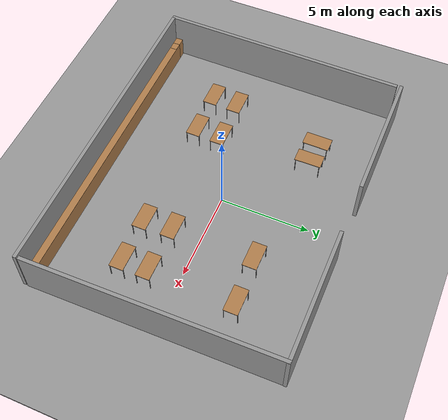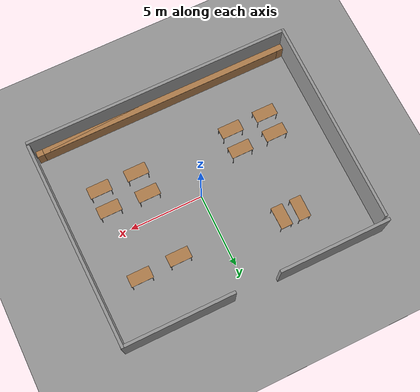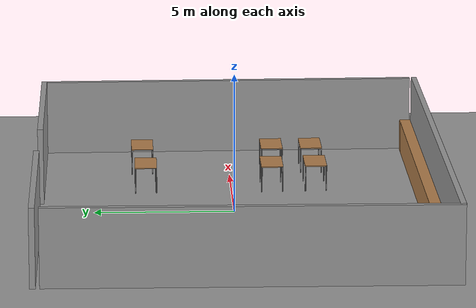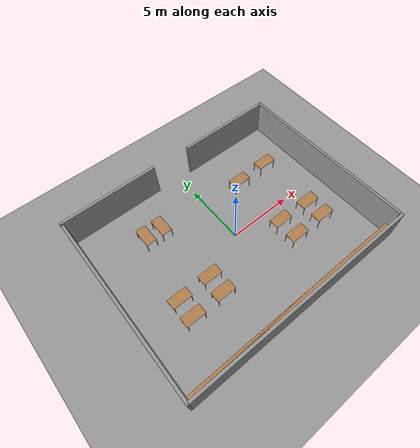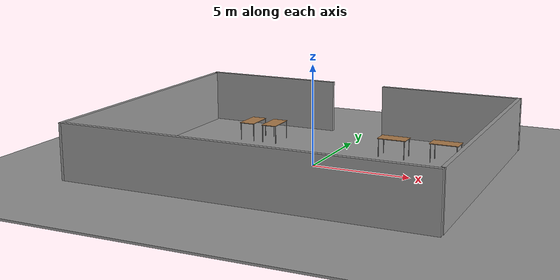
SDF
<sdf version="1.7">
 <world name="default">
  <light name="sun" type="directional">
   <pose>0 0 10 0 -0 0</pose>
   <diffuse>0.8 0.8 0.8 1</diffuse>
   <specular>0.2 0.2 0.2 1</specular>
   <attenuation>
    <range>1000</range>
    <constant>0.9</constant>
    <linear>0.01</linear>
    <quadratic>0.001</quadratic>
   </attenuation>
   <direction>-0.5 0.1 -0.9</direction>
   <spot><inner_angle>0</inner_angle><outer_angle>0</outer_angle><falloff>0</falloff></spot>
  </light>
  <model name="ground_plane">
   <static>1</static>
   <link name="link">
    <collision name="collision">
     <geometry><plane><normal>0 0 1</normal><size>100 100</size></plane></geometry>
     <surface>
      <contact><collide_bitmask>65535</collide_bitmask></contact>
      <friction><ode><mu>100</mu><mu2>50</mu2></ode></friction>
     </surface>
    </collision>
    <visual name="visual">
     <cast_shadows>0</cast_shadows>
     <geometry><plane><normal>0 0 1</normal><size>100 100</size></plane></geometry>
     <material>
      <script><uri>file://media/materials/scripts/gazebo.material</uri><name>Gazebo/Grey</name></script>
     </material>
    </visual>
   </link>
  </model>
  <gravity>0 0 -9.8</gravity>
  <magnetic_field>6e-06 2.3e-05 -4.2e-05</magnetic_field>
  <atmosphere type="adiabatic"/>
  <physics type="ode">
   <max_step_size>0.001</max_step_size>
   <real_time_factor>1</real_time_factor>
   <real_time_update_rate>1000</real_time_update_rate>
  </physics>
  <scene><ambient>0.4 0.4 0.4 1</ambient><background>0.7 0.7 0.7 1</background><shadows>1</shadows></scene>
  <spherical_coordinates>
   <surface_model>EARTH_WGS84</surface_model>
   <latitude_deg>0</latitude_deg>
   <longitude_deg>0</longitude_deg>
   <elevation>0</elevation>
   <heading_deg>0</heading_deg>
  </spherical_coordinates>
  <model name="ground_plane_0">
   <static>1</static>
   <link name="link">
    <collision name="collision">
     <geometry><plane><normal>0 0 1</normal><size>100 100</size></plane></geometry>
     <surface>
      <contact><collide_bitmask>65535</collide_bitmask></contact>
      <friction><ode><mu>100</mu><mu2>50</mu2></ode></friction>
     </surface>
    </collision>
    <visual name="visual">
     <cast_shadows>0</cast_shadows>
     <geometry><plane><normal>0 0 1</normal><size>100 100</size></plane></geometry>
     <material>
      <script><uri>file://media/materials/scripts/gazebo.material</uri><name>Gazebo/Grey</name></script>
     </material>
    </visual>
   </link>
   <pose>1.78818 -1.76805 0 0 -0 0</pose>
  </model>
  <model name="bookshelf_far">
   <link name="link">
    <inertial>
     <mass>1</mass>
     <inertia><ixx>1</ixx><ixy>0</ixy><ixz>0</ixz><iyy>1</iyy><iyz>0</iyz><izz>1</izz></inertia>
    </inertial>
    <pose>-8.07477 0 0 0 -0 0</pose>
    <visual name="visual5">
     <pose>0 -0.195 1.19 0 -0 0</pose>
     <geometry><box><size>16.8 0.4 0.02</size></box></geometry>
     <material>
      <script><uri>file://media/materials/scripts/gazebo.material</uri><name>Gazebo/Wood</name></script>
      <shader type="pixel"><normal_map>__default__</normal_map></shader>
      <ambient>1 1 1 1</ambient>
      <diffuse>1 1 1 1</diffuse>
      <specular>0.2 0.2 0.2 1</specular>
      <emissive>0 0 0 1</emissive>
     </material>
    </visual>
    <visual name="visual1">
     <pose>0 0.005 0.6 0 -0 0</pose>
     <geometry><box><size>16.8 0.01 1.2</size></box></geometry>
     <material>
      <script><uri>file://media/materials/scripts/gazebo.material</uri><name>Gazebo/Wood</name></script>
      <shader type="pixel"><normal_map>__default__</normal_map></shader>
      <ambient>1 1 1 1</ambient>
      <diffuse>1 1 1 1</diffuse>
      <specular>0.2 0.2 0.2 1</specular>
      <emissive>0 0 0 1</emissive>
     </material>
    </visual>
    <visual name="visual3">
     <pose>-0.45 -0.195 0.6 0 -0 0</pose>
     <geometry><box><size>16.8 0.4 1.2</size></box></geometry>
     <material>
      <script><uri>file://media/materials/scripts/gazebo.material</uri><name>Gazebo/Wood</name></script>
      <shader type="pixel"><normal_map>__default__</normal_map></shader>
      <ambient>1 1 1 1</ambient>
      <diffuse>1 1 1 1</diffuse>
      <specular>0.2 0.2 0.2 1</specular>
      <emissive>0 0 0 1</emissive>
     </material>
    </visual>
    <visual name="visual4">
     <pose>0 -0.195 0.03 0 -0 0</pose>
     <geometry><box><size>16.8 0.4 0.06</size></box></geometry>
     <material>
      <script><uri>file://media/materials/scripts/gazebo.material</uri><name>Gazebo/Wood</name></script>
      <shader type="pixel"><normal_map>__default__</normal_map></shader>
      <ambient>1 1 1 1</ambient>
      <diffuse>1 1 1 1</diffuse>
      <specular>0.2 0.2 0.2 1</specular>
      <emissive>0 0 0 1</emissive>
     </material>
    </visual>
    <visual name="visual2">
     <pose>0.45 -0.195 0.6 0 -0 0</pose>
     <geometry><box><size>16.8 0.4 1.2</size></box></geometry>
     <material>
      <script><uri>file://media/materials/scripts/gazebo.material</uri><name>Gazebo/Wood</name></script>
      <shader type="pixel"><normal_map>__default__</normal_map></shader>
      <ambient>1 1 1 1</ambient>
      <diffuse>1 1 1 1</diffuse>
      <specular>0.2 0.2 0.2 1</specular>
      <emissive>0 0 0 1</emissive>
     </material>
    </visual>
    <visual name="visual6">
     <pose>0 -0.195 0.43 0 -0 0</pose>
     <geometry><box><size>16.8 0.4 0.02</size></box></geometry>
     <material>
      <script><uri>file://media/materials/scripts/gazebo.material</uri><name>Gazebo/Wood</name></script>
      <shader type="pixel"><normal_map>__default__</normal_map></shader>
      <ambient>1 1 1 1</ambient>
      <diffuse>1 1 1 1</diffuse>
      <specular>0.2 0.2 0.2 1</specular>
      <emissive>0 0 0 1</emissive>
     </material>
    </visual>
    <visual name="visual7">
     <pose>0 -0.195 0.8 0 -0 0</pose>
     <geometry><box><size>17.2 0.4 0.02</size></box></geometry>
     <material>
      <script><uri>file://media/materials/scripts/gazebo.material</uri><name>Gazebo/Wood</name></script>
      <shader type="pixel"><normal_map>__default__</normal_map></shader>
      <ambient>1 1 1 1</ambient>
      <diffuse>1 1 1 1</diffuse>
      <specular>0.2 0.2 0.2 1</specular>
      <emissive>0 0 0 1</emissive>
     </material>
    </visual>
    <collision name="back">
     <pose>0 0.005 0.6 0 -0 0</pose>
     <geometry><box><size>16.8 0.01 1.2</size></box></geometry>
     <surface>
      <friction>
       <ode><mu>1</mu><mu2>1</mu2><fdir1>0 0 0</fdir1><slip1>0</slip1><slip2>0</slip2></ode>
       <torsional>
        <coefficient>1</coefficient>
        <patch_radius>0</patch_radius>
        <surface_radius>0</surface_radius>
        <use_patch_radius>1</use_patch_radius>
        <ode><slip>0</slip></ode>
       </torsional>
      </friction>
      <bounce><restitution_coefficient>0</restitution_coefficient><threshold>1e+06</threshold></bounce>
      <contact>
       <collide_without_contact>0</collide_without_contact>
       <collide_without_contact_bitmask>1</collide_without_contact_bitmask>
       <collide_bitmask>1</collide_bitmask>
       <ode>
        <soft_cfm>0</soft_cfm>
        <soft_erp>0.2</soft_erp>
        <kp>1e+13</kp>
        <kd>1</kd>
        <max_vel>0.01</max_vel>
        <min_depth>0</min_depth>
       </ode>
       <bullet>
        <split_impulse>1</split_impulse>
        <split_impulse_penetration_threshold>-0.01</split_impulse_penetration_threshold>
        <soft_cfm>0</soft_cfm>
        <soft_erp>0.2</soft_erp>
        <kp>1e+13</kp>
        <kd>1</kd>
       </bullet>
      </contact>
     </surface>
    </collision>
    <collision name="top">
     <pose>0 -0.195 1.19 0 -0 0</pose>
     <geometry><box><size>17.2 0.4 0.02</size></box></geometry>
     <surface>
      <friction>
       <ode><mu>1</mu><mu2>1</mu2><fdir1>0 0 0</fdir1><slip1>0</slip1><slip2>0</slip2></ode>
       <torsional>
        <coefficient>1</coefficient>
        <patch_radius>0</patch_radius>
        <surface_radius>0</surface_radius>
        <use_patch_radius>1</use_patch_radius>
        <ode><slip>0</slip></ode>
       </torsional>
      </friction>
      <bounce><restitution_coefficient>0</restitution_coefficient><threshold>1e+06</threshold></bounce>
      <contact>
       <collide_without_contact>0</collide_without_contact>
       <collide_without_contact_bitmask>1</collide_without_contact_bitmask>
       <collide_bitmask>1</collide_bitmask>
       <ode>
        <soft_cfm>0</soft_cfm>
        <soft_erp>0.2</soft_erp>
        <kp>1e+13</kp>
        <kd>1</kd>
        <max_vel>0.01</max_vel>
        <min_depth>0</min_depth>
       </ode>
       <bullet>
        <split_impulse>1</split_impulse>
        <split_impulse_penetration_threshold>-0.01</split_impulse_penetration_threshold>
        <soft_cfm>0</soft_cfm>
        <soft_erp>0.2</soft_erp>
        <kp>1e+13</kp>
        <kd>1</kd>
       </bullet>
      </contact>
     </surface>
    </collision>
    <collision name="right_side">
     <pose>-0.45 -0.195 0.6 0 -0 0</pose>
     <geometry><box><size>16.8 0.4 1.2</size></box></geometry>
     <surface>
      <friction>
       <ode><mu>1</mu><mu2>1</mu2><fdir1>0 0 0</fdir1><slip1>0</slip1><slip2>0</slip2></ode>
       <torsional>
        <coefficient>1</coefficient>
        <patch_radius>0</patch_radius>
        <surface_radius>0</surface_radius>
        <use_patch_radius>1</use_patch_radius>
        <ode><slip>0</slip></ode>
       </torsional>
      </friction>
      <bounce><restitution_coefficient>0</restitution_coefficient><threshold>1e+06</threshold></bounce>
      <contact>
       <collide_without_contact>0</collide_without_contact>
       <collide_without_contact_bitmask>1</collide_without_contact_bitmask>
       <collide_bitmask>1</collide_bitmask>
       <ode>
        <soft_cfm>0</soft_cfm>
        <soft_erp>0.2</soft_erp>
        <kp>1e+13</kp>
        <kd>1</kd>
        <max_vel>0.01</max_vel>
        <min_depth>0</min_depth>
       </ode>
       <bullet>
        <split_impulse>1</split_impulse>
        <split_impulse_penetration_threshold>-0.01</split_impulse_penetration_threshold>
        <soft_cfm>0</soft_cfm>
        <soft_erp>0.2</soft_erp>
        <kp>1e+13</kp>
        <kd>1</kd>
       </bullet>
      </contact>
     </surface>
    </collision>
    <collision name="left_side">
     <pose>0.45 -0.195 0.6 0 -0 0</pose>
     <geometry><box><size>16.8 0.4 1.2</size></box></geometry>
     <surface>
      <friction>
       <ode><mu>1</mu><mu2>1</mu2><fdir1>0 0 0</fdir1><slip1>0</slip1><slip2>0</slip2></ode>
       <torsional>
        <coefficient>1</coefficient>
        <patch_radius>0</patch_radius>
        <surface_radius>0</surface_radius>
        <use_patch_radius>1</use_patch_radius>
        <ode><slip>0</slip></ode>
       </torsional>
      </friction>
      <bounce><restitution_coefficient>0</restitution_coefficient><threshold>1e+06</threshold></bounce>
      <contact>
       <collide_without_contact>0</collide_without_contact>
       <collide_without_contact_bitmask>1</collide_without_contact_bitmask>
       <collide_bitmask>1</collide_bitmask>
       <ode>
        <soft_cfm>0</soft_cfm>
        <soft_erp>0.2</soft_erp>
        <kp>1e+13</kp>
        <kd>1</kd>
        <max_vel>0.01</max_vel>
        <min_depth>0</min_depth>
       </ode>
       <bullet>
        <split_impulse>1</split_impulse>
        <split_impulse_penetration_threshold>-0.01</split_impulse_penetration_threshold>
        <soft_cfm>0</soft_cfm>
        <soft_erp>0.2</soft_erp>
        <kp>1e+13</kp>
        <kd>1</kd>
       </bullet>
      </contact>
     </surface>
    </collision>
    <collision name="low_shelf">
     <pose>0 -0.195 0.43 0 -0 0</pose>
     <geometry><box><size>16.8 0.4 0.02</size></box></geometry>
     <surface>
      <friction>
       <ode><mu>1</mu><mu2>1</mu2><fdir1>0 0 0</fdir1><slip1>0</slip1><slip2>0</slip2></ode>
       <torsional>
        <coefficient>1</coefficient>
        <patch_radius>0</patch_radius>
        <surface_radius>0</surface_radius>
        <use_patch_radius>1</use_patch_radius>
        <ode><slip>0</slip></ode>
       </torsional>
      </friction>
      <bounce><restitution_coefficient>0</restitution_coefficient><threshold>1e+06</threshold></bounce>
      <contact>
       <collide_without_contact>0</collide_without_contact>
       <collide_without_contact_bitmask>1</collide_without_contact_bitmask>
       <collide_bitmask>1</collide_bitmask>
       <ode>
        <soft_cfm>0</soft_cfm>
        <soft_erp>0.2</soft_erp>
        <kp>1e+13</kp>
        <kd>1</kd>
        <max_vel>0.01</max_vel>
        <min_depth>0</min_depth>
       </ode>
       <bullet>
        <split_impulse>1</split_impulse>
        <split_impulse_penetration_threshold>-0.01</split_impulse_penetration_threshold>
        <soft_cfm>0</soft_cfm>
        <soft_erp>0.2</soft_erp>
        <kp>1e+13</kp>
        <kd>1</kd>
       </bullet>
      </contact>
     </surface>
    </collision>
    <collision name="bottom">
     <pose>0 -0.195 0.03 0 -0 0</pose>
     <geometry><box><size>16.8 0.4 0.06</size></box></geometry>
     <surface>
      <friction>
       <ode><mu>1</mu><mu2>1</mu2><fdir1>0 0 0</fdir1><slip1>0</slip1><slip2>0</slip2></ode>
       <torsional>
        <coefficient>1</coefficient>
        <patch_radius>0</patch_radius>
        <surface_radius>0</surface_radius>
        <use_patch_radius>1</use_patch_radius>
        <ode><slip>0</slip></ode>
       </torsional>
      </friction>
      <bounce><restitution_coefficient>0</restitution_coefficient><threshold>1e+06</threshold></bounce>
      <contact>
       <collide_without_contact>0</collide_without_contact>
       <collide_without_contact_bitmask>1</collide_without_contact_bitmask>
       <collide_bitmask>1</collide_bitmask>
       <ode>
        <soft_cfm>0</soft_cfm>
        <soft_erp>0.2</soft_erp>
        <kp>1e+13</kp>
        <kd>1</kd>
        <max_vel>0.01</max_vel>
        <min_depth>0</min_depth>
       </ode>
       <bullet>
        <split_impulse>1</split_impulse>
        <split_impulse_penetration_threshold>-0.01</split_impulse_penetration_threshold>
        <soft_cfm>0</soft_cfm>
        <soft_erp>0.2</soft_erp>
        <kp>1e+13</kp>
        <kd>1</kd>
       </bullet>
      </contact>
     </surface>
    </collision>
    <collision name="high_shelf">
     <pose>0 -0.195 0.8 0 -0 0</pose>
     <geometry><box><size>16.8 0.4 0.02</size></box></geometry>
     <surface>
      <friction>
       <ode><mu>1</mu><mu2>1</mu2><fdir1>0 0 0</fdir1><slip1>0</slip1><slip2>0</slip2></ode>
       <torsional>
        <coefficient>1</coefficient>
        <patch_radius>0</patch_radius>
        <surface_radius>0</surface_radius>
        <use_patch_radius>1</use_patch_radius>
        <ode><slip>0</slip></ode>
       </torsional>
      </friction>
      <bounce><restitution_coefficient>0</restitution_coefficient><threshold>1e+06</threshold></bounce>
      <contact>
       <collide_without_contact>0</collide_without_contact>
       <collide_without_contact_bitmask>1</collide_without_contact_bitmask>
       <collide_bitmask>1</collide_bitmask>
       <ode>
        <soft_cfm>0</soft_cfm>
        <soft_erp>0.2</soft_erp>
        <kp>1e+13</kp>
        <kd>1</kd>
        <max_vel>0.01</max_vel>
        <min_depth>0</min_depth>
       </ode>
       <bullet>
        <split_impulse>1</split_impulse>
        <split_impulse_penetration_threshold>-0.01</split_impulse_penetration_threshold>
        <soft_cfm>0</soft_cfm>
        <soft_erp>0.2</soft_erp>
        <kp>1e+13</kp>
        <kd>1</kd>
       </bullet>
      </contact>
     </surface>
    </collision>
   </link>
   <static>1</static>
   <pose>7.67216 -6.62917 0 0 -0 0</pose>
  </model>
  <model name="side_grey_wall_far">
   <link name="link">
    <pose>0 0 1.4 0 -0 0</pose>
    <inertial>
     <mass>1</mass>
     <inertia><ixx>1</ixx><ixy>0</ixy><ixz>0</ixz><iyy>1</iyy><iyz>0</iyz><izz>1</izz></inertia>
    </inertial>
    <visual name="visual">
     <cast_shadows>0</cast_shadows>
     <geometry><box><size>14 0.2 2.8</size></box></geometry>
     <material>
      <script>
       <uri>model://grey_wall/materials/scripts</uri>
       <uri>model://grey_wall/materials/textures</uri>
       <name>vrc/grey_wall</name>
      </script>
      <shader type="pixel"><normal_map>__default__</normal_map></shader>
      <ambient>1 1 1 1</ambient>
      <diffuse>1 1 1 1</diffuse>
      <specular>0 0 0 1</specular>
      <emissive>0 0 0 1</emissive>
     </material>
    </visual>
    <collision name="collision">
     <geometry><box><size>14 0.2 2.8</size></box></geometry>
     <surface>
      <friction>
       <ode><mu>1</mu><mu2>1</mu2><fdir1>0 0 0</fdir1><slip1>0</slip1><slip2>0</slip2></ode>
       <torsional>
        <coefficient>1</coefficient>
        <patch_radius>0</patch_radius>
        <surface_radius>0</surface_radius>
        <use_patch_radius>1</use_patch_radius>
        <ode><slip>0</slip></ode>
       </torsional>
      </friction>
      <bounce><restitution_coefficient>0</restitution_coefficient><threshold>1e+06</threshold></bounce>
      <contact>
       <collide_without_contact>0</collide_without_contact>
       <collide_without_contact_bitmask>1</collide_without_contact_bitmask>
       <collide_bitmask>1</collide_bitmask>
       <ode>
        <soft_cfm>0</soft_cfm>
        <soft_erp>0.2</soft_erp>
        <kp>1e+13</kp>
        <kd>1</kd>
        <max_vel>0.01</max_vel>
        <min_depth>0</min_depth>
       </ode>
       <bullet>
        <split_impulse>1</split_impulse>
        <split_impulse_penetration_threshold>-0.01</split_impulse_penetration_threshold>
        <soft_cfm>0</soft_cfm>
        <soft_erp>0.2</soft_erp>
        <kp>1e+13</kp>
        <kd>1</kd>
       </bullet>
      </contact>
     </surface>
    </collision>
   </link>
   <static>1</static>
   <pose>8.54024 0.001071 0 0 0 -1.55555</pose>
  </model>
  <model name="side_grey_wall_far_clone">
   <link name="link">
    <pose>0 0 1.4 0 -0 0</pose>
    <inertial>
     <mass>1</mass>
     <inertia><ixx>1</ixx><ixy>0</ixy><ixz>0</ixz><iyy>1</iyy><iyz>0</iyz><izz>1</izz></inertia>
    </inertial>
    <visual name="visual">
     <cast_shadows>0</cast_shadows>
     <geometry><box><size>14 0.2 2.8</size></box></geometry>
     <material>
      <script>
       <uri>model://grey_wall/materials/scripts</uri>
       <uri>model://grey_wall/materials/textures</uri>
       <name>vrc/grey_wall</name>
      </script>
      <shader type="pixel"><normal_map>__default__</normal_map></shader>
      <ambient>1 1 1 1</ambient>
      <diffuse>1 1 1 1</diffuse>
      <specular>0 0 0 1</specular>
      <emissive>0 0 0 1</emissive>
     </material>
    </visual>
    <collision name="collision">
     <geometry><box><size>14 0.2 2.8</size></box></geometry>
     <surface>
      <friction>
       <ode><mu>1</mu><mu2>1</mu2><fdir1>0 0 0</fdir1><slip1>0</slip1><slip2>0</slip2></ode>
       <torsional>
        <coefficient>1</coefficient>
        <patch_radius>0</patch_radius>
        <surface_radius>0</surface_radius>
        <use_patch_radius>1</use_patch_radius>
        <ode><slip>0</slip></ode>
       </torsional>
      </friction>
      <bounce><restitution_coefficient>0</restitution_coefficient><threshold>1e+06</threshold></bounce>
      <contact>
       <collide_without_contact>0</collide_without_contact>
       <collide_without_contact_bitmask>1</collide_without_contact_bitmask>
       <collide_bitmask>1</collide_bitmask>
       <ode>
        <soft_cfm>0</soft_cfm>
        <soft_erp>0.2</soft_erp>
        <kp>1e+13</kp>
        <kd>1</kd>
        <max_vel>0.01</max_vel>
        <min_depth>0</min_depth>
       </ode>
       <bullet>
        <split_impulse>1</split_impulse>
        <split_impulse_penetration_threshold>-0.01</split_impulse_penetration_threshold>
        <soft_cfm>0</soft_cfm>
        <soft_erp>0.2</soft_erp>
        <kp>1e+13</kp>
        <kd>1</kd>
       </bullet>
      </contact>
     </surface>
    </collision>
   </link>
   <static>1</static>
   <pose>-9.32 -0.255453 0 0 0 -1.57799</pose>
  </model>
  <model name="front_grey_wall_far">
   <link name="link">
    <pose>-5.03781 0.079911 1.4 0 -0 0</pose>
    <inertial>
     <inertia><ixx>0</ixx><ixy>0</ixy><ixz>0</ixz><iyy>0</iyy><iyz>0</iyz><izz>0</izz></inertia>
     <mass>0</mass>
    </inertial>
    <visual name="visual">
     <cast_shadows>0</cast_shadows>
     <geometry><box><size>18.05 0.2 2.8</size></box></geometry>
     <material>
      <script>
       <uri>model://grey_wall/materials/scripts</uri>
       <uri>model://grey_wall/materials/textures</uri>
       <name>vrc/grey_wall</name>
      </script>
      <shader type="pixel"><normal_map>__default__</normal_map></shader>
      <ambient>1 1 1 1</ambient>
      <diffuse>1 1 1 1</diffuse>
      <specular>0 0 0 1</specular>
      <emissive>0 0 0 1</emissive>
     </material>
    </visual>
    <collision name="collision">
     <geometry><box><size>17.5 0.2 2.8</size></box></geometry>
     <surface>
      <friction>
       <ode><mu>1</mu><mu2>1</mu2><fdir1>0 0 0</fdir1><slip1>0</slip1><slip2>0</slip2></ode>
       <torsional>
        <coefficient>1</coefficient>
        <patch_radius>0</patch_radius>
        <surface_radius>0</surface_radius>
        <use_patch_radius>1</use_patch_radius>
        <ode><slip>0</slip></ode>
       </torsional>
      </friction>
      <bounce><restitution_coefficient>0</restitution_coefficient><threshold>1e+06</threshold></bounce>
      <contact>
       <collide_without_contact>0</collide_without_contact>
       <collide_without_contact_bitmask>1</collide_without_contact_bitmask>
       <collide_bitmask>1</collide_bitmask>
       <ode>
        <soft_cfm>0</soft_cfm>
        <soft_erp>0.2</soft_erp>
        <kp>1e+13</kp>
        <kd>1</kd>
        <max_vel>0.01</max_vel>
        <min_depth>0</min_depth>
       </ode>
       <bullet>
        <split_impulse>1</split_impulse>
        <split_impulse_penetration_threshold>-0.01</split_impulse_penetration_threshold>
        <soft_cfm>0</soft_cfm>
        <soft_erp>0.2</soft_erp>
        <kp>1e+13</kp>
        <kd>1</kd>
       </bullet>
      </contact>
     </surface>
    </collision>
   </link>
   <static>1</static>
   <pose>4.73611 -7.24926 0 0 -0 0</pose>
  </model>
  <model name="table">
   <static>1</static>
   <link name="link">
    <collision name="surface">
     <pose>0 0 1 0 -0 0</pose>
     <geometry><box><size>1.5 0.8 0.03</size></box></geometry>
     <surface><friction><ode><mu>0.6</mu><mu2>0.6</mu2></ode></friction></surface>
    </collision>
    <visual name="visual1">
     <pose>0 0 1 0 -0 0</pose>
     <geometry><box><size>1.5 0.8 0.03</size></box></geometry>
     <material>
      <script><uri>file://media/materials/scripts/gazebo.material</uri><name>Gazebo/Wood</name></script>
     </material>
    </visual>
    <collision name="front_left_leg">
     <pose>0.68 0.38 0.5 0 -0 0</pose>
     <geometry><cylinder><radius>0.02</radius><length>1</length></cylinder></geometry>
    </collision>
    <visual name="front_left_leg">
     <pose>0.68 0.38 0.5 0 -0 0</pose>
     <geometry><cylinder><radius>0.02</radius><length>1</length></cylinder></geometry>
     <material>
      <script><uri>file://media/materials/scripts/gazebo.material</uri><name>Gazebo/Grey</name></script>
     </material>
    </visual>
    <collision name="front_right_leg">
     <pose>0.68 -0.38 0.5 0 -0 0</pose>
     <geometry><cylinder><radius>0.02</radius><length>1</length></cylinder></geometry>
    </collision>
    <visual name="front_right_leg">
     <pose>0.68 -0.38 0.5 0 -0 0</pose>
     <geometry><cylinder><radius>0.02</radius><length>1</length></cylinder></geometry>
     <material>
      <script><uri>file://media/materials/scripts/gazebo.material</uri><name>Gazebo/Grey</name></script>
     </material>
    </visual>
    <collision name="back_right_leg">
     <pose>-0.68 -0.38 0.5 0 -0 0</pose>
     <geometry><cylinder><radius>0.02</radius><length>1</length></cylinder></geometry>
    </collision>
    <visual name="back_right_leg">
     <pose>-0.68 -0.38 0.5 0 -0 0</pose>
     <geometry><cylinder><radius>0.02</radius><length>1</length></cylinder></geometry>
     <material>
      <script><uri>file://media/materials/scripts/gazebo.material</uri><name>Gazebo/Grey</name></script>
     </material>
    </visual>
    <collision name="back_left_leg">
     <pose>-0.68 0.38 0.5 0 -0 0</pose>
     <geometry><cylinder><radius>0.02</radius><length>1</length></cylinder></geometry>
    </collision>
    <visual name="back_left_leg">
     <pose>-0.68 0.38 0.5 0 -0 0</pose>
     <geometry><cylinder><radius>0.02</radius><length>1</length></cylinder></geometry>
     <material>
      <script><uri>file://media/materials/scripts/gazebo.material</uri><name>Gazebo/Grey</name></script>
     </material>
    </visual>
   </link>
   <pose>5.74944 -3.03336 0 0 -0 0</pose>
  </model>
  <model name="table_clone">
   <static>1</static>
   <link name="link">
    <collision name="surface">
     <pose>0 0 1 0 -0 0</pose>
     <geometry><box><size>1.5 0.8 0.03</size></box></geometry>
     <surface><friction><ode><mu>0.6</mu><mu2>0.6</mu2></ode></friction></surface>
    </collision>
    <visual name="visual1">
     <pose>0 0 1 0 -0 0</pose>
     <geometry><box><size>1.5 0.8 0.03</size></box></geometry>
     <material>
      <script><uri>file://media/materials/scripts/gazebo.material</uri><name>Gazebo/Wood</name></script>
     </material>
    </visual>
    <collision name="front_left_leg">
     <pose>0.68 0.38 0.5 0 -0 0</pose>
     <geometry><cylinder><radius>0.02</radius><length>1</length></cylinder></geometry>
    </collision>
    <visual name="front_left_leg">
     <pose>0.68 0.38 0.5 0 -0 0</pose>
     <geometry><cylinder><radius>0.02</radius><length>1</length></cylinder></geometry>
     <material>
      <script><uri>file://media/materials/scripts/gazebo.material</uri><name>Gazebo/Grey</name></script>
     </material>
    </visual>
    <collision name="front_right_leg">
     <pose>0.68 -0.38 0.5 0 -0 0</pose>
     <geometry><cylinder><radius>0.02</radius><length>1</length></cylinder></geometry>
    </collision>
    <visual name="front_right_leg">
     <pose>0.68 -0.38 0.5 0 -0 0</pose>
     <geometry><cylinder><radius>0.02</radius><length>1</length></cylinder></geometry>
     <material>
      <script><uri>file://media/materials/scripts/gazebo.material</uri><name>Gazebo/Grey</name></script>
     </material>
    </visual>
    <collision name="back_right_leg">
     <pose>-0.68 -0.38 0.5 0 -0 0</pose>
     <geometry><cylinder><radius>0.02</radius><length>1</length></cylinder></geometry>
    </collision>
    <visual name="back_right_leg">
     <pose>-0.68 -0.38 0.5 0 -0 0</pose>
     <geometry><cylinder><radius>0.02</radius><length>1</length></cylinder></geometry>
     <material>
      <script><uri>file://media/materials/scripts/gazebo.material</uri><name>Gazebo/Grey</name></script>
     </material>
    </visual>
    <collision name="back_left_leg">
     <pose>-0.68 0.38 0.5 0 -0 0</pose>
     <geometry><cylinder><radius>0.02</radius><length>1</length></cylinder></geometry>
    </collision>
    <visual name="back_left_leg">
     <pose>-0.68 0.38 0.5 0 -0 0</pose>
     <geometry><cylinder><radius>0.02</radius><length>1</length></cylinder></geometry>
     <material>
      <script><uri>file://media/materials/scripts/gazebo.material</uri><name>Gazebo/Grey</name></script>
     </material>
    </visual>
   </link>
   <pose>3.16129 -3.06142 0 0 -0 0</pose>
  </model>
  <model name="table_clone_0">
   <static>1</static>
   <link name="link">
    <collision name="surface">
     <pose>0 0 1 0 -0 0</pose>
     <geometry><box><size>1.5 0.8 0.03</size></box></geometry>
     <surface><friction><ode><mu>0.6</mu><mu2>0.6</mu2></ode></friction></surface>
    </collision>
    <visual name="visual1">
     <pose>0 0 1 0 -0 0</pose>
     <geometry><box><size>1.5 0.8 0.03</size></box></geometry>
     <material>
      <script><uri>file://media/materials/scripts/gazebo.material</uri><name>Gazebo/Wood</name></script>
     </material>
    </visual>
    <collision name="front_left_leg">
     <pose>0.68 0.38 0.5 0 -0 0</pose>
     <geometry><cylinder><radius>0.02</radius><length>1</length></cylinder></geometry>
    </collision>
    <visual name="front_left_leg">
     <pose>0.68 0.38 0.5 0 -0 0</pose>
     <geometry><cylinder><radius>0.02</radius><length>1</length></cylinder></geometry>
     <material>
      <script><uri>file://media/materials/scripts/gazebo.material</uri><name>Gazebo/Grey</name></script>
     </material>
    </visual>
    <collision name="front_right_leg">
     <pose>0.68 -0.38 0.5 0 -0 0</pose>
     <geometry><cylinder><radius>0.02</radius><length>1</length></cylinder></geometry>
    </collision>
    <visual name="front_right_leg">
     <pose>0.68 -0.38 0.5 0 -0 0</pose>
     <geometry><cylinder><radius>0.02</radius><length>1</length></cylinder></geometry>
     <material>
      <script><uri>file://media/materials/scripts/gazebo.material</uri><name>Gazebo/Grey</name></script>
     </material>
    </visual>
    <collision name="back_right_leg">
     <pose>-0.68 -0.38 0.5 0 -0 0</pose>
     <geometry><cylinder><radius>0.02</radius><length>1</length></cylinder></geometry>
    </collision>
    <visual name="back_right_leg">
     <pose>-0.68 -0.38 0.5 0 -0 0</pose>
     <geometry><cylinder><radius>0.02</radius><length>1</length></cylinder></geometry>
     <material>
      <script><uri>file://media/materials/scripts/gazebo.material</uri><name>Gazebo/Grey</name></script>
     </material>
    </visual>
    <collision name="back_left_leg">
     <pose>-0.68 0.38 0.5 0 -0 0</pose>
     <geometry><cylinder><radius>0.02</radius><length>1</length></cylinder></geometry>
    </collision>
    <visual name="back_left_leg">
     <pose>-0.68 0.38 0.5 0 -0 0</pose>
     <geometry><cylinder><radius>0.02</radius><length>1</length></cylinder></geometry>
     <material>
      <script><uri>file://media/materials/scripts/gazebo.material</uri><name>Gazebo/Grey</name></script>
     </material>
    </visual>
   </link>
   <pose>5.72129 -1.57121 0 0 -0 0</pose>
  </model>
  <model name="table_clone_1">
   <static>1</static>
   <link name="link">
    <collision name="surface">
     <pose>0 0 1 0 -0 0</pose>
     <geometry><box><size>1.5 0.8 0.03</size></box></geometry>
     <surface><friction><ode><mu>0.6</mu><mu2>0.6</mu2></ode></friction></surface>
    </collision>
    <visual name="visual1">
     <pose>0 0 1 0 -0 0</pose>
     <geometry><box><size>1.5 0.8 0.03</size></box></geometry>
     <material>
      <script><uri>file://media/materials/scripts/gazebo.material</uri><name>Gazebo/Wood</name></script>
     </material>
    </visual>
    <collision name="front_left_leg">
     <pose>0.68 0.38 0.5 0 -0 0</pose>
     <geometry><cylinder><radius>0.02</radius><length>1</length></cylinder></geometry>
    </collision>
    <visual name="front_left_leg">
     <pose>0.68 0.38 0.5 0 -0 0</pose>
     <geometry><cylinder><radius>0.02</radius><length>1</length></cylinder></geometry>
     <material>
      <script><uri>file://media/materials/scripts/gazebo.material</uri><name>Gazebo/Grey</name></script>
     </material>
    </visual>
    <collision name="front_right_leg">
     <pose>0.68 -0.38 0.5 0 -0 0</pose>
     <geometry><cylinder><radius>0.02</radius><length>1</length></cylinder></geometry>
    </collision>
    <visual name="front_right_leg">
     <pose>0.68 -0.38 0.5 0 -0 0</pose>
     <geometry><cylinder><radius>0.02</radius><length>1</length></cylinder></geometry>
     <material>
      <script><uri>file://media/materials/scripts/gazebo.material</uri><name>Gazebo/Grey</name></script>
     </material>
    </visual>
    <collision name="back_right_leg">
     <pose>-0.68 -0.38 0.5 0 -0 0</pose>
     <geometry><cylinder><radius>0.02</radius><length>1</length></cylinder></geometry>
    </collision>
    <visual name="back_right_leg">
     <pose>-0.68 -0.38 0.5 0 -0 0</pose>
     <geometry><cylinder><radius>0.02</radius><length>1</length></cylinder></geometry>
     <material>
      <script><uri>file://media/materials/scripts/gazebo.material</uri><name>Gazebo/Grey</name></script>
     </material>
    </visual>
    <collision name="back_left_leg">
     <pose>-0.68 0.38 0.5 0 -0 0</pose>
     <geometry><cylinder><radius>0.02</radius><length>1</length></cylinder></geometry>
    </collision>
    <visual name="back_left_leg">
     <pose>-0.68 0.38 0.5 0 -0 0</pose>
     <geometry><cylinder><radius>0.02</radius><length>1</length></cylinder></geometry>
     <material>
      <script><uri>file://media/materials/scripts/gazebo.material</uri><name>Gazebo/Grey</name></script>
     </material>
    </visual>
   </link>
   <pose>3.08615 -1.46667 0 0 -0 0</pose>
  </model>
  <model name="table_clone_2">
   <static>1</static>
   <link name="link">
    <collision name="surface">
     <pose>0 0 1 0 -0 0</pose>
     <geometry><box><size>1.5 0.8 0.03</size></box></geometry>
     <surface><friction><ode><mu>0.6</mu><mu2>0.6</mu2></ode></friction></surface>
    </collision>
    <visual name="visual1">
     <pose>0 0 1 0 -0 0</pose>
     <geometry><box><size>1.5 0.8 0.03</size></box></geometry>
     <material>
      <script><uri>file://media/materials/scripts/gazebo.material</uri><name>Gazebo/Wood</name></script>
     </material>
    </visual>
    <collision name="front_left_leg">
     <pose>0.68 0.38 0.5 0 -0 0</pose>
     <geometry><cylinder><radius>0.02</radius><length>1</length></cylinder></geometry>
    </collision>
    <visual name="front_left_leg">
     <pose>0.68 0.38 0.5 0 -0 0</pose>
     <geometry><cylinder><radius>0.02</radius><length>1</length></cylinder></geometry>
     <material>
      <script><uri>file://media/materials/scripts/gazebo.material</uri><name>Gazebo/Grey</name></script>
     </material>
    </visual>
    <collision name="front_right_leg">
     <pose>0.68 -0.38 0.5 0 -0 0</pose>
     <geometry><cylinder><radius>0.02</radius><length>1</length></cylinder></geometry>
    </collision>
    <visual name="front_right_leg">
     <pose>0.68 -0.38 0.5 0 -0 0</pose>
     <geometry><cylinder><radius>0.02</radius><length>1</length></cylinder></geometry>
     <material>
      <script><uri>file://media/materials/scripts/gazebo.material</uri><name>Gazebo/Grey</name></script>
     </material>
    </visual>
    <collision name="back_right_leg">
     <pose>-0.68 -0.38 0.5 0 -0 0</pose>
     <geometry><cylinder><radius>0.02</radius><length>1</length></cylinder></geometry>
    </collision>
    <visual name="back_right_leg">
     <pose>-0.68 -0.38 0.5 0 -0 0</pose>
     <geometry><cylinder><radius>0.02</radius><length>1</length></cylinder></geometry>
     <material>
      <script><uri>file://media/materials/scripts/gazebo.material</uri><name>Gazebo/Grey</name></script>
     </material>
    </visual>
    <collision name="back_left_leg">
     <pose>-0.68 0.38 0.5 0 -0 0</pose>
     <geometry><cylinder><radius>0.02</radius><length>1</length></cylinder></geometry>
    </collision>
    <visual name="back_left_leg">
     <pose>-0.68 0.38 0.5 0 -0 0</pose>
     <geometry><cylinder><radius>0.02</radius><length>1</length></cylinder></geometry>
     <material>
      <script><uri>file://media/materials/scripts/gazebo.material</uri><name>Gazebo/Grey</name></script>
     </material>
    </visual>
   </link>
   <pose>5.74692 3.23541 0 0 -0 0</pose>
  </model>
  <model name="table_clone_3">
   <static>1</static>
   <link name="link">
    <collision name="surface">
     <pose>0 0 1 0 -0 0</pose>
     <geometry><box><size>1.5 0.8 0.03</size></box></geometry>
     <surface><friction><ode><mu>0.6</mu><mu2>0.6</mu2></ode></friction></surface>
    </collision>
    <visual name="visual1">
     <pose>0 0 1 0 -0 0</pose>
     <geometry><box><size>1.5 0.8 0.03</size></box></geometry>
     <material>
      <script><uri>file://media/materials/scripts/gazebo.material</uri><name>Gazebo/Wood</name></script>
     </material>
    </visual>
    <collision name="front_left_leg">
     <pose>0.68 0.38 0.5 0 -0 0</pose>
     <geometry><cylinder><radius>0.02</radius><length>1</length></cylinder></geometry>
    </collision>
    <visual name="front_left_leg">
     <pose>0.68 0.38 0.5 0 -0 0</pose>
     <geometry><cylinder><radius>0.02</radius><length>1</length></cylinder></geometry>
     <material>
      <script><uri>file://media/materials/scripts/gazebo.material</uri><name>Gazebo/Grey</name></script>
     </material>
    </visual>
    <collision name="front_right_leg">
     <pose>0.68 -0.38 0.5 0 -0 0</pose>
     <geometry><cylinder><radius>0.02</radius><length>1</length></cylinder></geometry>
    </collision>
    <visual name="front_right_leg">
     <pose>0.68 -0.38 0.5 0 -0 0</pose>
     <geometry><cylinder><radius>0.02</radius><length>1</length></cylinder></geometry>
     <material>
      <script><uri>file://media/materials/scripts/gazebo.material</uri><name>Gazebo/Grey</name></script>
     </material>
    </visual>
    <collision name="back_right_leg">
     <pose>-0.68 -0.38 0.5 0 -0 0</pose>
     <geometry><cylinder><radius>0.02</radius><length>1</length></cylinder></geometry>
    </collision>
    <visual name="back_right_leg">
     <pose>-0.68 -0.38 0.5 0 -0 0</pose>
     <geometry><cylinder><radius>0.02</radius><length>1</length></cylinder></geometry>
     <material>
      <script><uri>file://media/materials/scripts/gazebo.material</uri><name>Gazebo/Grey</name></script>
     </material>
    </visual>
    <collision name="back_left_leg">
     <pose>-0.68 0.38 0.5 0 -0 0</pose>
     <geometry><cylinder><radius>0.02</radius><length>1</length></cylinder></geometry>
    </collision>
    <visual name="back_left_leg">
     <pose>-0.68 0.38 0.5 0 -0 0</pose>
     <geometry><cylinder><radius>0.02</radius><length>1</length></cylinder></geometry>
     <material>
      <script><uri>file://media/materials/scripts/gazebo.material</uri><name>Gazebo/Grey</name></script>
     </material>
    </visual>
   </link>
   <pose>3.0597 3.1312 0 0 -0 0</pose>
  </model>
  <model name="table_clone_4">
   <static>1</static>
   <link name="link">
    <collision name="surface">
     <pose>0 0 1 0 -0 0</pose>
     <geometry><box><size>1.5 0.8 0.03</size></box></geometry>
     <surface><friction><ode><mu>0.6</mu><mu2>0.6</mu2></ode></friction></surface>
    </collision>
    <visual name="visual1">
     <pose>0 0 1 0 -0 0</pose>
     <geometry><box><size>1.5 0.8 0.03</size></box></geometry>
     <material>
      <script><uri>file://media/materials/scripts/gazebo.material</uri><name>Gazebo/Wood</name></script>
     </material>
    </visual>
    <collision name="front_left_leg">
     <pose>0.68 0.38 0.5 0 -0 0</pose>
     <geometry><cylinder><radius>0.02</radius><length>1</length></cylinder></geometry>
    </collision>
    <visual name="front_left_leg">
     <pose>0.68 0.38 0.5 0 -0 0</pose>
     <geometry><cylinder><radius>0.02</radius><length>1</length></cylinder></geometry>
     <material>
      <script><uri>file://media/materials/scripts/gazebo.material</uri><name>Gazebo/Grey</name></script>
     </material>
    </visual>
    <collision name="front_right_leg">
     <pose>0.68 -0.38 0.5 0 -0 0</pose>
     <geometry><cylinder><radius>0.02</radius><length>1</length></cylinder></geometry>
    </collision>
    <visual name="front_right_leg">
     <pose>0.68 -0.38 0.5 0 -0 0</pose>
     <geometry><cylinder><radius>0.02</radius><length>1</length></cylinder></geometry>
     <material>
      <script><uri>file://media/materials/scripts/gazebo.material</uri><name>Gazebo/Grey</name></script>
     </material>
    </visual>
    <collision name="back_right_leg">
     <pose>-0.68 -0.38 0.5 0 -0 0</pose>
     <geometry><cylinder><radius>0.02</radius><length>1</length></cylinder></geometry>
    </collision>
    <visual name="back_right_leg">
     <pose>-0.68 -0.38 0.5 0 -0 0</pose>
     <geometry><cylinder><radius>0.02</radius><length>1</length></cylinder></geometry>
     <material>
      <script><uri>file://media/materials/scripts/gazebo.material</uri><name>Gazebo/Grey</name></script>
     </material>
    </visual>
    <collision name="back_left_leg">
     <pose>-0.68 0.38 0.5 0 -0 0</pose>
     <geometry><cylinder><radius>0.02</radius><length>1</length></cylinder></geometry>
    </collision>
    <visual name="back_left_leg">
     <pose>-0.68 0.38 0.5 0 -0 0</pose>
     <geometry><cylinder><radius>0.02</radius><length>1</length></cylinder></geometry>
     <material>
      <script><uri>file://media/materials/scripts/gazebo.material</uri><name>Gazebo/Grey</name></script>
     </material>
    </visual>
   </link>
   <pose>-6.10567 -3.09602 0 0 -0 0</pose>
  </model>
  <model name="table_clone_5">
   <static>1</static>
   <link name="link">
    <collision name="surface">
     <pose>0 0 1 0 -0 0</pose>
     <geometry><box><size>1.5 0.8 0.03</size></box></geometry>
     <surface><friction><ode><mu>0.6</mu><mu2>0.6</mu2></ode></friction></surface>
    </collision>
    <visual name="visual1">
     <pose>0 0 1 0 -0 0</pose>
     <geometry><box><size>1.5 0.8 0.03</size></box></geometry>
     <material>
      <script><uri>file://media/materials/scripts/gazebo.material</uri><name>Gazebo/Wood</name></script>
     </material>
    </visual>
    <collision name="front_left_leg">
     <pose>0.68 0.38 0.5 0 -0 0</pose>
     <geometry><cylinder><radius>0.02</radius><length>1</length></cylinder></geometry>
    </collision>
    <visual name="front_left_leg">
     <pose>0.68 0.38 0.5 0 -0 0</pose>
     <geometry><cylinder><radius>0.02</radius><length>1</length></cylinder></geometry>
     <material>
      <script><uri>file://media/materials/scripts/gazebo.material</uri><name>Gazebo/Grey</name></script>
     </material>
    </visual>
    <collision name="front_right_leg">
     <pose>0.68 -0.38 0.5 0 -0 0</pose>
     <geometry><cylinder><radius>0.02</radius><length>1</length></cylinder></geometry>
    </collision>
    <visual name="front_right_leg">
     <pose>0.68 -0.38 0.5 0 -0 0</pose>
     <geometry><cylinder><radius>0.02</radius><length>1</length></cylinder></geometry>
     <material>
      <script><uri>file://media/materials/scripts/gazebo.material</uri><name>Gazebo/Grey</name></script>
     </material>
    </visual>
    <collision name="back_right_leg">
     <pose>-0.68 -0.38 0.5 0 -0 0</pose>
     <geometry><cylinder><radius>0.02</radius><length>1</length></cylinder></geometry>
    </collision>
    <visual name="back_right_leg">
     <pose>-0.68 -0.38 0.5 0 -0 0</pose>
     <geometry><cylinder><radius>0.02</radius><length>1</length></cylinder></geometry>
     <material>
      <script><uri>file://media/materials/scripts/gazebo.material</uri><name>Gazebo/Grey</name></script>
     </material>
    </visual>
    <collision name="back_left_leg">
     <pose>-0.68 0.38 0.5 0 -0 0</pose>
     <geometry><cylinder><radius>0.02</radius><length>1</length></cylinder></geometry>
    </collision>
    <visual name="back_left_leg">
     <pose>-0.68 0.38 0.5 0 -0 0</pose>
     <geometry><cylinder><radius>0.02</radius><length>1</length></cylinder></geometry>
     <material>
      <script><uri>file://media/materials/scripts/gazebo.material</uri><name>Gazebo/Grey</name></script>
     </material>
    </visual>
   </link>
   <pose>-3.5936 -3.04111 0 0 -0 0</pose>
  </model>
  <model name="table_clone_6">
   <static>1</static>
   <link name="link">
    <collision name="surface">
     <pose>0 0 1 0 -0 0</pose>
     <geometry><box><size>1.5 0.8 0.03</size></box></geometry>
     <surface><friction><ode><mu>0.6</mu><mu2>0.6</mu2></ode></friction></surface>
    </collision>
    <visual name="visual1">
     <pose>0 0 1 0 -0 0</pose>
     <geometry><box><size>1.5 0.8 0.03</size></box></geometry>
     <material>
      <script><uri>file://media/materials/scripts/gazebo.material</uri><name>Gazebo/Wood</name></script>
     </material>
    </visual>
    <collision name="front_left_leg">
     <pose>0.68 0.38 0.5 0 -0 0</pose>
     <geometry><cylinder><radius>0.02</radius><length>1</length></cylinder></geometry>
    </collision>
    <visual name="front_left_leg">
     <pose>0.68 0.38 0.5 0 -0 0</pose>
     <geometry><cylinder><radius>0.02</radius><length>1</length></cylinder></geometry>
     <material>
      <script><uri>file://media/materials/scripts/gazebo.material</uri><name>Gazebo/Grey</name></script>
     </material>
    </visual>
    <collision name="front_right_leg">
     <pose>0.68 -0.38 0.5 0 -0 0</pose>
     <geometry><cylinder><radius>0.02</radius><length>1</length></cylinder></geometry>
    </collision>
    <visual name="front_right_leg">
     <pose>0.68 -0.38 0.5 0 -0 0</pose>
     <geometry><cylinder><radius>0.02</radius><length>1</length></cylinder></geometry>
     <material>
      <script><uri>file://media/materials/scripts/gazebo.material</uri><name>Gazebo/Grey</name></script>
     </material>
    </visual>
    <collision name="back_right_leg">
     <pose>-0.68 -0.38 0.5 0 -0 0</pose>
     <geometry><cylinder><radius>0.02</radius><length>1</length></cylinder></geometry>
    </collision>
    <visual name="back_right_leg">
     <pose>-0.68 -0.38 0.5 0 -0 0</pose>
     <geometry><cylinder><radius>0.02</radius><length>1</length></cylinder></geometry>
     <material>
      <script><uri>file://media/materials/scripts/gazebo.material</uri><name>Gazebo/Grey</name></script>
     </material>
    </visual>
    <collision name="back_left_leg">
     <pose>-0.68 0.38 0.5 0 -0 0</pose>
     <geometry><cylinder><radius>0.02</radius><length>1</length></cylinder></geometry>
    </collision>
    <visual name="back_left_leg">
     <pose>-0.68 0.38 0.5 0 -0 0</pose>
     <geometry><cylinder><radius>0.02</radius><length>1</length></cylinder></geometry>
     <material>
      <script><uri>file://media/materials/scripts/gazebo.material</uri><name>Gazebo/Grey</name></script>
     </material>
    </visual>
   </link>
   <pose>-3.56102 -1.56807 0 0 -0 0</pose>
  </model>
  <model name="table_clone_7">
   <static>1</static>
   <link name="link">
    <collision name="surface">
     <pose>0 0 1 0 -0 0</pose>
     <geometry><box><size>1.5 0.8 0.03</size></box></geometry>
     <surface><friction><ode><mu>0.6</mu><mu2>0.6</mu2></ode></friction></surface>
    </collision>
    <visual name="visual1">
     <pose>0 0 1 0 -0 0</pose>
     <geometry><box><size>1.5 0.8 0.03</size></box></geometry>
     <material>
      <script><uri>file://media/materials/scripts/gazebo.material</uri><name>Gazebo/Wood</name></script>
     </material>
    </visual>
    <collision name="front_left_leg">
     <pose>0.68 0.38 0.5 0 -0 0</pose>
     <geometry><cylinder><radius>0.02</radius><length>1</length></cylinder></geometry>
    </collision>
    <visual name="front_left_leg">
     <pose>0.68 0.38 0.5 0 -0 0</pose>
     <geometry><cylinder><radius>0.02</radius><length>1</length></cylinder></geometry>
     <material>
      <script><uri>file://media/materials/scripts/gazebo.material</uri><name>Gazebo/Grey</name></script>
     </material>
    </visual>
    <collision name="front_right_leg">
     <pose>0.68 -0.38 0.5 0 -0 0</pose>
     <geometry><cylinder><radius>0.02</radius><length>1</length></cylinder></geometry>
    </collision>
    <visual name="front_right_leg">
     <pose>0.68 -0.38 0.5 0 -0 0</pose>
     <geometry><cylinder><radius>0.02</radius><length>1</length></cylinder></geometry>
     <material>
      <script><uri>file://media/materials/scripts/gazebo.material</uri><name>Gazebo/Grey</name></script>
     </material>
    </visual>
    <collision name="back_right_leg">
     <pose>-0.68 -0.38 0.5 0 -0 0</pose>
     <geometry><cylinder><radius>0.02</radius><length>1</length></cylinder></geometry>
    </collision>
    <visual name="back_right_leg">
     <pose>-0.68 -0.38 0.5 0 -0 0</pose>
     <geometry><cylinder><radius>0.02</radius><length>1</length></cylinder></geometry>
     <material>
      <script><uri>file://media/materials/scripts/gazebo.material</uri><name>Gazebo/Grey</name></script>
     </material>
    </visual>
    <collision name="back_left_leg">
     <pose>-0.68 0.38 0.5 0 -0 0</pose>
     <geometry><cylinder><radius>0.02</radius><length>1</length></cylinder></geometry>
    </collision>
    <visual name="back_left_leg">
     <pose>-0.68 0.38 0.5 0 -0 0</pose>
     <geometry><cylinder><radius>0.02</radius><length>1</length></cylinder></geometry>
     <material>
      <script><uri>file://media/materials/scripts/gazebo.material</uri><name>Gazebo/Grey</name></script>
     </material>
    </visual>
   </link>
   <pose>-6.07052 -1.62155 0 0 -0 0</pose>
  </model>
  <model name="table_clone_8">
   <static>1</static>
   <link name="link">
    <collision name="surface">
     <pose>0 0 1 0 -0 0</pose>
     <geometry><box><size>1.5 0.8 0.03</size></box></geometry>
     <surface><friction><ode><mu>0.6</mu><mu2>0.6</mu2></ode></friction></surface>
    </collision>
    <visual name="visual1">
     <pose>0 0 1 0 -0 0</pose>
     <geometry><box><size>1.5 0.8 0.03</size></box></geometry>
     <material>
      <script><uri>file://media/materials/scripts/gazebo.material</uri><name>Gazebo/Wood</name></script>
     </material>
    </visual>
    <collision name="front_left_leg">
     <pose>0.68 0.38 0.5 0 -0 0</pose>
     <geometry><cylinder><radius>0.02</radius><length>1</length></cylinder></geometry>
    </collision>
    <visual name="front_left_leg">
     <pose>0.68 0.38 0.5 0 -0 0</pose>
     <geometry><cylinder><radius>0.02</radius><length>1</length></cylinder></geometry>
     <material>
      <script><uri>file://media/materials/scripts/gazebo.material</uri><name>Gazebo/Grey</name></script>
     </material>
    </visual>
    <collision name="front_right_leg">
     <pose>0.68 -0.38 0.5 0 -0 0</pose>
     <geometry><cylinder><radius>0.02</radius><length>1</length></cylinder></geometry>
    </collision>
    <visual name="front_right_leg">
     <pose>0.68 -0.38 0.5 0 -0 0</pose>
     <geometry><cylinder><radius>0.02</radius><length>1</length></cylinder></geometry>
     <material>
      <script><uri>file://media/materials/scripts/gazebo.material</uri><name>Gazebo/Grey</name></script>
     </material>
    </visual>
    <collision name="back_right_leg">
     <pose>-0.68 -0.38 0.5 0 -0 0</pose>
     <geometry><cylinder><radius>0.02</radius><length>1</length></cylinder></geometry>
    </collision>
    <visual name="back_right_leg">
     <pose>-0.68 -0.38 0.5 0 -0 0</pose>
     <geometry><cylinder><radius>0.02</radius><length>1</length></cylinder></geometry>
     <material>
      <script><uri>file://media/materials/scripts/gazebo.material</uri><name>Gazebo/Grey</name></script>
     </material>
    </visual>
    <collision name="back_left_leg">
     <pose>-0.68 0.38 0.5 0 -0 0</pose>
     <geometry><cylinder><radius>0.02</radius><length>1</length></cylinder></geometry>
    </collision>
    <visual name="back_left_leg">
     <pose>-0.68 0.38 0.5 0 -0 0</pose>
     <geometry><cylinder><radius>0.02</radius><length>1</length></cylinder></geometry>
     <material>
      <script><uri>file://media/materials/scripts/gazebo.material</uri><name>Gazebo/Grey</name></script>
     </material>
    </visual>
   </link>
   <pose>-5.17662 3.63079 0 0 0 -1.58039</pose>
  </model>
  <model name="table_clone_8_clone">
   <static>1</static>
   <link name="link">
    <collision name="surface">
     <pose>0 0 1 0 -0 0</pose>
     <geometry><box><size>1.5 0.8 0.03</size></box></geometry>
     <surface><friction><ode><mu>0.6</mu><mu2>0.6</mu2></ode></friction></surface>
    </collision>
    <visual name="visual1">
     <pose>0 0 1 0 -0 0</pose>
     <geometry><box><size>1.5 0.8 0.03</size></box></geometry>
     <material>
      <script><uri>file://media/materials/scripts/gazebo.material</uri><name>Gazebo/Wood</name></script>
     </material>
    </visual>
    <collision name="front_left_leg">
     <pose>0.68 0.38 0.5 0 -0 0</pose>
     <geometry><cylinder><radius>0.02</radius><length>1</length></cylinder></geometry>
    </collision>
    <visual name="front_left_leg">
     <pose>0.68 0.38 0.5 0 -0 0</pose>
     <geometry><cylinder><radius>0.02</radius><length>1</length></cylinder></geometry>
     <material>
      <script><uri>file://media/materials/scripts/gazebo.material</uri><name>Gazebo/Grey</name></script>
     </material>
    </visual>
    <collision name="front_right_leg">
     <pose>0.68 -0.38 0.5 0 -0 0</pose>
     <geometry><cylinder><radius>0.02</radius><length>1</length></cylinder></geometry>
    </collision>
    <visual name="front_right_leg">
     <pose>0.68 -0.38 0.5 0 -0 0</pose>
     <geometry><cylinder><radius>0.02</radius><length>1</length></cylinder></geometry>
     <material>
      <script><uri>file://media/materials/scripts/gazebo.material</uri><name>Gazebo/Grey</name></script>
     </material>
    </visual>
    <collision name="back_right_leg">
     <pose>-0.68 -0.38 0.5 0 -0 0</pose>
     <geometry><cylinder><radius>0.02</radius><length>1</length></cylinder></geometry>
    </collision>
    <visual name="back_right_leg">
     <pose>-0.68 -0.38 0.5 0 -0 0</pose>
     <geometry><cylinder><radius>0.02</radius><length>1</length></cylinder></geometry>
     <material>
      <script><uri>file://media/materials/scripts/gazebo.material</uri><name>Gazebo/Grey</name></script>
     </material>
    </visual>
    <collision name="back_left_leg">
     <pose>-0.68 0.38 0.5 0 -0 0</pose>
     <geometry><cylinder><radius>0.02</radius><length>1</length></cylinder></geometry>
    </collision>
    <visual name="back_left_leg">
     <pose>-0.68 0.38 0.5 0 -0 0</pose>
     <geometry><cylinder><radius>0.02</radius><length>1</length></cylinder></geometry>
     <material>
      <script><uri>file://media/materials/scripts/gazebo.material</uri><name>Gazebo/Grey</name></script>
     </material>
    </visual>
   </link>
   <pose>-3.88456 3.61699 0 0 0 -1.55815</pose>
  </model>
  <model name="side_grey_wall_far_clone_0">
   <link name="link">
    <pose>0 0 1.4 0 -0 0</pose>
    <inertial>
     <mass>1</mass>
     <inertia><ixx>1</ixx><ixy>0</ixy><ixz>0</ixz><iyy>1</iyy><iyz>0</iyz><izz>1</izz></inertia>
    </inertial>
    <visual name="visual">
     <cast_shadows>0</cast_shadows>
     <geometry><box><size>7.5 0.2 2.8</size></box></geometry>
     <material>
      <script>
       <uri>model://grey_wall/materials/scripts</uri>
       <uri>model://grey_wall/materials/textures</uri>
       <name>vrc/grey_wall</name>
      </script>
      <shader type="pixel"><normal_map>__default__</normal_map></shader>
      <ambient>1 1 1 1</ambient>
      <diffuse>1 1 1 1</diffuse>
      <specular>0 0 0 1</specular>
      <emissive>0 0 0 1</emissive>
     </material>
    </visual>
    <collision name="collision">
     <geometry><box><size>7.5 0.2 2.8</size></box></geometry>
     <surface>
      <friction>
       <ode><mu>1</mu><mu2>1</mu2><fdir1>0 0 0</fdir1><slip1>0</slip1><slip2>0</slip2></ode>
       <torsional>
        <coefficient>1</coefficient>
        <patch_radius>0</patch_radius>
        <surface_radius>0</surface_radius>
        <use_patch_radius>1</use_patch_radius>
        <ode><slip>0</slip></ode>
       </torsional>
      </friction>
      <bounce><restitution_coefficient>0</restitution_coefficient><threshold>1e+06</threshold></bounce>
      <contact>
       <collide_without_contact>0</collide_without_contact>
       <collide_without_contact_bitmask>1</collide_without_contact_bitmask>
       <collide_bitmask>1</collide_bitmask>
       <ode>
        <soft_cfm>0</soft_cfm>
        <soft_erp>0.2</soft_erp>
        <kp>1e+13</kp>
        <kd>1</kd>
        <max_vel>0.01</max_vel>
        <min_depth>0</min_depth>
       </ode>
       <bullet>
        <split_impulse>1</split_impulse>
        <split_impulse_penetration_threshold>-0.01</split_impulse_penetration_threshold>
        <soft_cfm>0</soft_cfm>
        <soft_erp>0.2</soft_erp>
        <kp>1e+13</kp>
        <kd>1</kd>
       </bullet>
      </contact>
     </surface>
    </collision>
   </link>
   <static>1</static>
   <pose>4.79849 6.90517 0 0 -0 0</pose>
  </model>
  <model name="side_grey_wall_far_clone_0_clone">
   <link name="link">
    <pose>0 0 1.4 0 -0 0</pose>
    <inertial>
     <mass>1</mass>
     <inertia><ixx>1</ixx><ixy>0</ixy><ixz>0</ixz><iyy>1</iyy><iyz>0</iyz><izz>1</izz></inertia>
    </inertial>
    <visual name="visual">
     <cast_shadows>0</cast_shadows>
     <geometry><box><size>7.5 0.2 2.8</size></box></geometry>
     <material>
      <script>
       <uri>model://grey_wall/materials/scripts</uri>
       <uri>model://grey_wall/materials/textures</uri>
       <name>vrc/grey_wall</name>
      </script>
      <shader type="pixel"><normal_map>__default__</normal_map></shader>
      <ambient>1 1 1 1</ambient>
      <diffuse>1 1 1 1</diffuse>
      <specular>0 0 0 1</specular>
      <emissive>0 0 0 1</emissive>
     </material>
    </visual>
    <collision name="collision">
     <geometry><box><size>7.5 0.2 2.8</size></box></geometry>
     <surface>
      <friction>
       <ode><mu>1</mu><mu2>1</mu2><fdir1>0 0 0</fdir1><slip1>0</slip1><slip2>0</slip2></ode>
       <torsional>
        <coefficient>1</coefficient>
        <patch_radius>0</patch_radius>
        <surface_radius>0</surface_radius>
        <use_patch_radius>1</use_patch_radius>
        <ode><slip>0</slip></ode>
       </torsional>
      </friction>
      <bounce><restitution_coefficient>0</restitution_coefficient><threshold>1e+06</threshold></bounce>
      <contact>
       <collide_without_contact>0</collide_without_contact>
       <collide_without_contact_bitmask>1</collide_without_contact_bitmask>
       <collide_bitmask>1</collide_bitmask>
       <ode>
        <soft_cfm>0</soft_cfm>
        <soft_erp>0.2</soft_erp>
        <kp>1e+13</kp>
        <kd>1</kd>
        <max_vel>0.01</max_vel>
        <min_depth>0</min_depth>
       </ode>
       <bullet>
        <split_impulse>1</split_impulse>
        <split_impulse_penetration_threshold>-0.01</split_impulse_penetration_threshold>
        <soft_cfm>0</soft_cfm>
        <soft_erp>0.2</soft_erp>
        <kp>1e+13</kp>
        <kd>1</kd>
       </bullet>
      </contact>
     </surface>
    </collision>
   </link>
   <static>1</static>
   <pose>-5.63231 6.97582 0 0 -0 0</pose>
  </model>
 </world>
</sdf>
